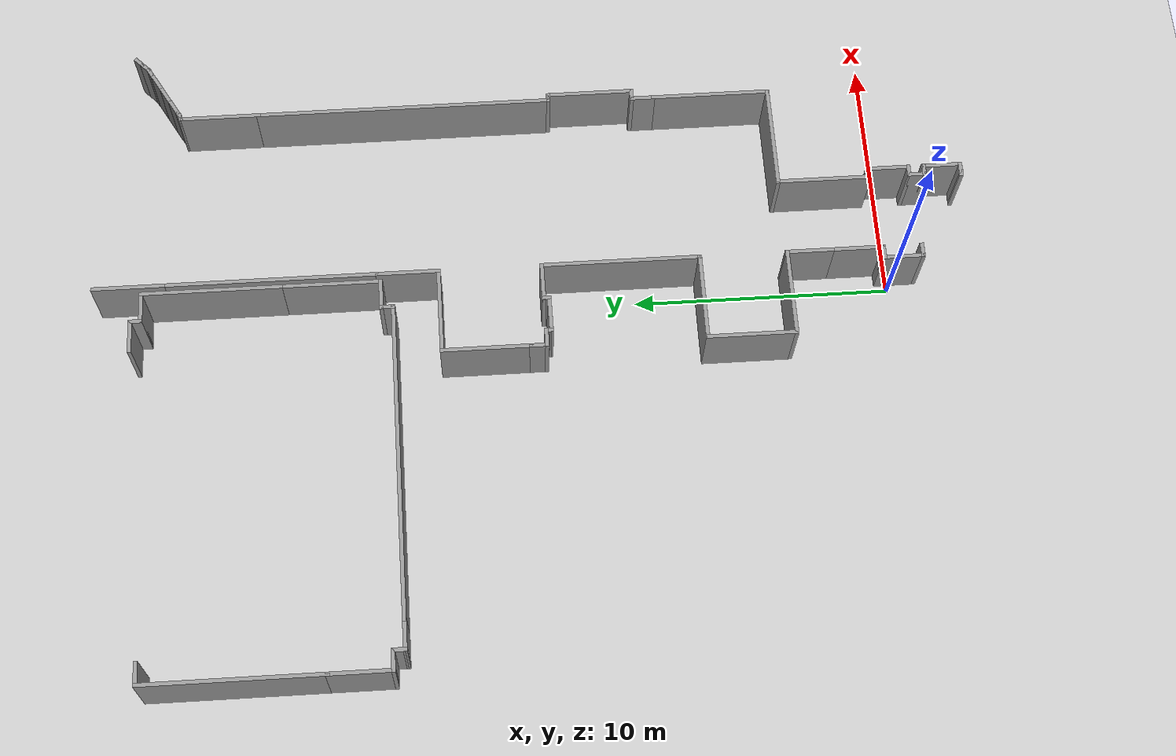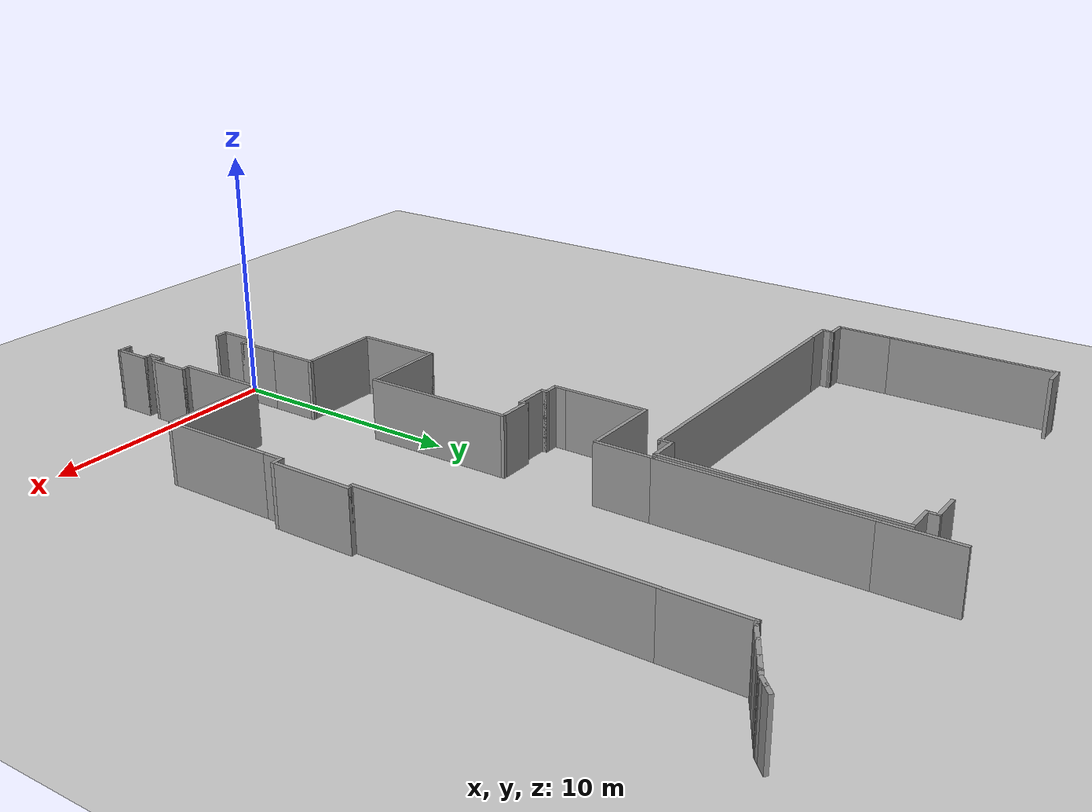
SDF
<sdf version="1.6">
 <world name="default">
  <model name="ground_plane">
   <static>1</static>
   <link name="link">
    <collision name="collision">
     <geometry><plane><normal>0 0 1</normal><size>100 100</size></plane></geometry>
     <surface><friction><ode><mu>100</mu><mu2>50</mu2></ode></friction></surface>
    </collision>
    <visual name="visual">
     <cast_shadows>0</cast_shadows>
     <geometry><plane><normal>0 0 1</normal><size>100 100</size></plane></geometry>
     <material>
      <script><uri>file://media/materials/scripts/gazebo.material</uri><name>Gazebo/Grey</name></script>
     </material>
    </visual>
   </link>
  </model>
  <model name="volen.world">
   <pose>-0.11623 -0.129362 0 0 -0 0</pose>
   <link name="Wall_104">
    <collision name="Wall_104_Collision">
     <geometry><box><size>0.5 0.15 2.5</size></box></geometry>
     <pose>0 0 1.25 0 -0 0</pose>
    </collision>
    <visual name="Wall_104_Visual">
     <pose>0 0 1.25 0 -0 0</pose>
     <geometry><box><size>0.5 0.15 2.5</size></box></geometry>
     <material>
      <script><uri>file://media/materials/scripts/gazebo.material</uri><name>Gazebo/Grey</name></script>
      <ambient>1 1 1 1</ambient>
     </material>
    </visual>
    <pose>10.9357 29.4725 0 0 0 -2.35619</pose>
   </link>
   <link name="Wall_105">
    <collision name="Wall_105_Collision">
     <geometry><box><size>0.5 0.15 2.5</size></box></geometry>
     <pose>0 0 1.25 0 -0 0</pose>
    </collision>
    <visual name="Wall_105_Visual">
     <pose>0 0 1.25 0 -0 0</pose>
     <geometry><box><size>0.5 0.15 2.5</size></box></geometry>
     <material>
      <script><uri>file://media/materials/scripts/gazebo.material</uri><name>Gazebo/Grey</name></script>
      <ambient>1 1 1 1</ambient>
     </material>
    </visual>
    <pose>10.6882 29.225 0 0 0 -2.35619</pose>
   </link>
   <link name="Wall_106">
    <collision name="Wall_106_Collision">
     <geometry><box><size>0.5 0.15 2.5</size></box></geometry>
     <pose>0 0 1.25 0 -0 0</pose>
    </collision>
    <visual name="Wall_106_Visual">
     <pose>0 0 1.25 0 -0 0</pose>
     <geometry><box><size>0.5 0.15 2.5</size></box></geometry>
     <material>
      <script><uri>file://media/materials/scripts/gazebo.material</uri><name>Gazebo/Grey</name></script>
      <ambient>1 1 1 1</ambient>
     </material>
    </visual>
    <pose>10.4129 29.0138 0 0 0 -2.61799</pose>
   </link>
   <link name="Wall_108">
    <collision name="Wall_108_Collision">
     <geometry><box><size>0.75 0.15 2.5</size></box></geometry>
     <pose>0 0 1.25 0 -0 0</pose>
    </collision>
    <visual name="Wall_108_Visual">
     <pose>0 0 1.25 0 -0 0</pose>
     <geometry><box><size>0.75 0.15 2.5</size></box></geometry>
     <material>
      <script><uri>file://media/materials/scripts/gazebo.material</uri><name>Gazebo/Grey</name></script>
      <ambient>1 1 1 1</ambient>
     </material>
    </visual>
    <pose>10.0015 28.7763 0 0 0 -2.61799</pose>
   </link>
   <link name="Wall_109">
    <collision name="Wall_109_Collision">
     <geometry><box><size>1 0.15 2.5</size></box></geometry>
     <pose>0 0 1.25 0 -0 0</pose>
    </collision>
    <visual name="Wall_109_Visual">
     <pose>0 0 1.25 0 -0 0</pose>
     <geometry><box><size>1 0.15 2.5</size></box></geometry>
     <material>
      <script><uri>file://media/materials/scripts/gazebo.material</uri><name>Gazebo/Grey</name></script>
      <ambient>1 1 1 1</ambient>
     </material>
    </visual>
    <pose>9.37367 28.4138 0 0 0 -2.61799</pose>
   </link>
   <link name="Wall_110">
    <collision name="Wall_110_Collision">
     <geometry><box><size>0.75 0.15 2.5</size></box></geometry>
     <pose>0 0 1.25 0 -0 0</pose>
    </collision>
    <visual name="Wall_110_Visual">
     <pose>0 0 1.25 0 -0 0</pose>
     <geometry><box><size>0.75 0.15 2.5</size></box></geometry>
     <material>
      <script><uri>file://media/materials/scripts/gazebo.material</uri><name>Gazebo/Grey</name></script>
      <ambient>1 1 1 1</ambient>
     </material>
    </visual>
    <pose>8.7458 28.0513 0 0 0 -2.61799</pose>
   </link>
   <link name="Wall_111">
    <collision name="Wall_111_Collision">
     <geometry><box><size>0.25 0.15 2.5</size></box></geometry>
     <pose>0 0 1.25 0 -0 0</pose>
    </collision>
    <visual name="Wall_111_Visual">
     <pose>0 0 1.25 0 -0 0</pose>
     <geometry><box><size>0.25 0.15 2.5</size></box></geometry>
     <material>
      <script><uri>file://media/materials/scripts/gazebo.material</uri><name>Gazebo/Grey</name></script>
      <ambient>1 1 1 1</ambient>
     </material>
    </visual>
    <pose>8.44269 27.8763 0 0 0 -2.61799</pose>
   </link>
   <link name="Wall_112">
    <collision name="Wall_112_Collision">
     <geometry><box><size>0.25 0.15 2.5</size></box></geometry>
     <pose>0 0 1.25 0 -0 0</pose>
    </collision>
    <visual name="Wall_112_Visual">
     <pose>0 0 1.25 0 -0 0</pose>
     <geometry><box><size>0.25 0.15 2.5</size></box></geometry>
     <material>
      <script><uri>file://media/materials/scripts/gazebo.material</uri><name>Gazebo/Grey</name></script>
      <ambient>1 1 1 1</ambient>
     </material>
    </visual>
    <pose>8.3511 27.8383 0 0 0 -2.87979</pose>
   </link>
   <link name="Wall_113">
    <collision name="Wall_113_Collision">
     <geometry><box><size>0.25 0.15 2.5</size></box></geometry>
     <pose>0 0 1.25 0 -0 0</pose>
    </collision>
    <visual name="Wall_113_Visual">
     <pose>0 0 1.25 0 -0 0</pose>
     <geometry><box><size>0.25 0.15 2.5</size></box></geometry>
     <material>
      <script><uri>file://media/materials/scripts/gazebo.material</uri><name>Gazebo/Grey</name></script>
      <ambient>1 1 1 1</ambient>
     </material>
    </visual>
    <pose>8.2545 27.8124 0 0 0 -2.87979</pose>
   </link>
   <link name="Wall_114">
    <collision name="Wall_114_Collision">
     <geometry><box><size>3.25 0.15 2.5</size></box></geometry>
     <pose>0 0 1.25 0 -0 0</pose>
    </collision>
    <visual name="Wall_114_Visual">
     <pose>0 0 1.25 0 -0 0</pose>
     <geometry><box><size>3.25 0.15 2.5</size></box></geometry>
     <material>
      <script><uri>file://media/materials/scripts/gazebo.material</uri><name>Gazebo/Grey</name></script>
      <ambient>1 1 1 1</ambient>
     </material>
    </visual>
    <pose>8.20621 26.2495 0 0 0 -1.5708</pose>
   </link>
   <link name="Wall_116">
    <collision name="Wall_116_Collision">
     <geometry><box><size>11.75 0.15 2.5</size></box></geometry>
     <pose>0 0 1.25 0 -0 0</pose>
    </collision>
    <visual name="Wall_116_Visual">
     <pose>0 0 1.25 0 -0 0</pose>
     <geometry><box><size>11.75 0.15 2.5</size></box></geometry>
     <material>
      <script><uri>file://media/materials/scripts/gazebo.material</uri><name>Gazebo/Grey</name></script>
      <ambient>1 1 1 1</ambient>
     </material>
    </visual>
    <pose>8.20622 18.8994 0 0 0 -1.57079</pose>
   </link>
   <link name="Wall_118">
    <collision name="Wall_118_Collision">
     <geometry><box><size>0.38 0.15 2.5</size></box></geometry>
     <pose>0 0 1.25 0 -0 0</pose>
    </collision>
    <visual name="Wall_118_Visual">
     <pose>0 0 1.25 0 -0 0</pose>
     <geometry><box><size>0.38 0.15 2.5</size></box></geometry>
     <material>
      <script><uri>file://media/materials/scripts/gazebo.material</uri><name>Gazebo/Grey</name></script>
      <ambient>1 1 1 1</ambient>
     </material>
    </visual>
    <pose>8.32123 13.0994 0 0 -0 0</pose>
   </link>
   <link name="Wall_121">
    <collision name="Wall_121_Collision">
     <geometry><box><size>3.5 0.15 2.5</size></box></geometry>
     <pose>0 0 1.25 0 -0 0</pose>
    </collision>
    <visual name="Wall_121_Visual">
     <pose>0 0 1.25 0 -0 0</pose>
     <geometry><box><size>3.5 0.15 2.5</size></box></geometry>
     <material>
      <script><uri>file://media/materials/scripts/gazebo.material</uri><name>Gazebo/Grey</name></script>
      <ambient>1 1 1 1</ambient>
     </material>
    </visual>
    <pose>8.43623 11.4244 0 0 0 -1.5708</pose>
   </link>
   <link name="Wall_122">
    <collision name="Wall_122_Collision">
     <geometry><box><size>0.5 0.15 2.5</size></box></geometry>
     <pose>0 0 1.25 0 -0 0</pose>
    </collision>
    <visual name="Wall_122_Visual">
     <pose>0 0 1.25 0 -0 0</pose>
     <geometry><box><size>0.5 0.15 2.5</size></box></geometry>
     <material>
      <script><uri>file://media/materials/scripts/gazebo.material</uri><name>Gazebo/Grey</name></script>
      <ambient>1 1 1 1</ambient>
     </material>
    </visual>
    <pose>8.26123 9.74936 0 0 -0 3.14159</pose>
   </link>
   <link name="Wall_123">
    <collision name="Wall_123_Collision">
     <geometry><box><size>1 0.15 2.5</size></box></geometry>
     <pose>0 0 1.25 0 -0 0</pose>
    </collision>
    <visual name="Wall_123_Visual">
     <pose>0 0 1.25 0 -0 0</pose>
     <geometry><box><size>1 0.15 2.5</size></box></geometry>
     <material>
      <script><uri>file://media/materials/scripts/gazebo.material</uri><name>Gazebo/Grey</name></script>
      <ambient>1 1 1 1</ambient>
     </material>
    </visual>
    <pose>8.08623 9.32436 0 0 0 -1.5708</pose>
   </link>
   <link name="Wall_125">
    <collision name="Wall_125_Collision">
     <geometry><box><size>4.75 0.15 2.5</size></box></geometry>
     <pose>0 0 1.25 0 -0 0</pose>
    </collision>
    <visual name="Wall_125_Visual">
     <pose>0 0 1.25 0 -0 0</pose>
     <geometry><box><size>4.75 0.15 2.5</size></box></geometry>
     <material>
      <script><uri>file://media/materials/scripts/gazebo.material</uri><name>Gazebo/Grey</name></script>
      <ambient>1 1 1 1</ambient>
     </material>
    </visual>
    <pose>8.08623 6.59936 0 0 0 -1.5708</pose>
   </link>
   <link name="Wall_126">
    <collision name="Wall_126_Collision">
     <geometry><box><size>4.25 0.15 2.5</size></box></geometry>
     <pose>0 0 1.25 0 -0 0</pose>
    </collision>
    <visual name="Wall_126_Visual">
     <pose>0 0 1.25 0 -0 0</pose>
     <geometry><box><size>4.25 0.15 2.5</size></box></geometry>
     <material>
      <script><uri>file://media/materials/scripts/gazebo.material</uri><name>Gazebo/Grey</name></script>
      <ambient>1 1 1 1</ambient>
     </material>
    </visual>
    <pose>6.03623 4.29936 0 0 -0 3.14159</pose>
   </link>
   <link name="Wall_128">
    <collision name="Wall_128_Collision">
     <geometry><box><size>3.75 0.15 2.5</size></box></geometry>
     <pose>0 0 1.25 0 -0 0</pose>
    </collision>
    <visual name="Wall_128_Visual">
     <pose>0 0 1.25 0 -0 0</pose>
     <geometry><box><size>3.75 0.15 2.5</size></box></geometry>
     <material>
      <script><uri>file://media/materials/scripts/gazebo.material</uri><name>Gazebo/Grey</name></script>
      <ambient>1 1 1 1</ambient>
     </material>
    </visual>
    <pose>3.98623 2.49936 0 0 0 -1.5708</pose>
   </link>
   <link name="Wall_129">
    <collision name="Wall_129_Collision">
     <geometry><box><size>0.5 0.15 2.5</size></box></geometry>
     <pose>0 0 1.25 0 -0 0</pose>
    </collision>
    <visual name="Wall_129_Visual">
     <pose>0 0 1.25 0 -0 0</pose>
     <geometry><box><size>0.5 0.15 2.5</size></box></geometry>
     <material>
      <script><uri>file://media/materials/scripts/gazebo.material</uri><name>Gazebo/Grey</name></script>
      <ambient>1 1 1 1</ambient>
     </material>
    </visual>
    <pose>4.16123 0.699362 0 0 -0 0</pose>
   </link>
   <link name="Wall_130">
    <collision name="Wall_130_Collision">
     <geometry><box><size>1.75 0.15 2.5</size></box></geometry>
     <pose>0 0 1.25 0 -0 0</pose>
    </collision>
    <visual name="Wall_130_Visual">
     <pose>0 0 1.25 0 -0 0</pose>
     <geometry><box><size>1.75 0.15 2.5</size></box></geometry>
     <material>
      <script><uri>file://media/materials/scripts/gazebo.material</uri><name>Gazebo/Grey</name></script>
      <ambient>1 1 1 1</ambient>
     </material>
    </visual>
    <pose>4.33623 -0.100638 0 0 0 -1.5708</pose>
   </link>
   <link name="Wall_131">
    <collision name="Wall_131_Collision">
     <geometry><box><size>0.5 0.15 2.5</size></box></geometry>
     <pose>0 0 1.25 0 -0 0</pose>
    </collision>
    <visual name="Wall_131_Visual">
     <pose>0 0 1.25 0 -0 0</pose>
     <geometry><box><size>0.5 0.15 2.5</size></box></geometry>
     <material>
      <script><uri>file://media/materials/scripts/gazebo.material</uri><name>Gazebo/Grey</name></script>
      <ambient>1 1 1 1</ambient>
     </material>
    </visual>
    <pose>4.16123 -0.900638 0 0 -0 3.14159</pose>
   </link>
   <link name="Wall_132">
    <collision name="Wall_132_Collision">
     <geometry><box><size>0.75 0.15 2.5</size></box></geometry>
     <pose>0 0 1.25 0 -0 0</pose>
    </collision>
    <visual name="Wall_132_Visual">
     <pose>0 0 1.25 0 -0 0</pose>
     <geometry><box><size>0.75 0.15 2.5</size></box></geometry>
     <material>
      <script><uri>file://media/materials/scripts/gazebo.material</uri><name>Gazebo/Grey</name></script>
      <ambient>1 1 1 1</ambient>
     </material>
    </visual>
    <pose>3.98623 -1.20064 0 0 0 -1.5708</pose>
   </link>
   <link name="Wall_133">
    <collision name="Wall_133_Collision">
     <geometry><box><size>0.5 0.15 2.5</size></box></geometry>
     <pose>0 0 1.25 0 -0 0</pose>
    </collision>
    <visual name="Wall_133_Visual">
     <pose>0 0 1.25 0 -0 0</pose>
     <geometry><box><size>0.5 0.15 2.5</size></box></geometry>
     <material>
      <script><uri>file://media/materials/scripts/gazebo.material</uri><name>Gazebo/Grey</name></script>
      <ambient>1 1 1 1</ambient>
     </material>
    </visual>
    <pose>4.16123 -1.50064 0 0 -0 0</pose>
   </link>
   <link name="Wall_135">
    <collision name="Wall_135_Collision">
     <geometry><box><size>1.6 0.15 2.5</size></box></geometry>
     <pose>0 0 1.25 0 -0 0</pose>
    </collision>
    <visual name="Wall_135_Visual">
     <pose>0 0 1.25 0 -0 0</pose>
     <geometry><box><size>1.6 0.15 2.5</size></box></geometry>
     <material>
      <script><uri>file://media/materials/scripts/gazebo.material</uri><name>Gazebo/Grey</name></script>
      <ambient>1 1 1 1</ambient>
     </material>
    </visual>
    <pose>4.33623 -2.22564 0 0 0 -1.5708</pose>
   </link>
   <link name="Wall_136">
    <collision name="Wall_136_Collision">
     <geometry><box><size>0.480681 0.15 2.5</size></box></geometry>
     <pose>0 0 1.25 0 -0 0</pose>
    </collision>
    <visual name="Wall_136_Visual">
     <pose>0 0 1.25 0 -0 0</pose>
     <geometry><box><size>0.480681 0.15 2.5</size></box></geometry>
     <material>
      <script><uri>file://media/materials/scripts/gazebo.material</uri><name>Gazebo/Grey</name></script>
      <ambient>1 1 1 1</ambient>
     </material>
    </visual>
    <pose>4.17098 -2.94965 0 0 -0 3.13564</pose>
   </link>
   <link name="Wall_137">
    <collision name="Wall_137_Collision">
     <geometry><box><size>0.280454 0.15 2.5</size></box></geometry>
     <pose>0 0 1.25 0 -0 0</pose>
    </collision>
    <visual name="Wall_137_Visual">
     <pose>0 0 1.25 0 -0 0</pose>
     <geometry><box><size>0.280454 0.15 2.5</size></box></geometry>
     <material>
      <script><uri>file://media/materials/scripts/gazebo.material</uri><name>Gazebo/Grey</name></script>
      <ambient>1 1 1 1</ambient>
     </material>
    </visual>
    <pose>3.94053 -2.94916 0 0 -0 3.04965</pose>
   </link>
   <link name="Wall_254">
    <collision name="Wall_254_Collision">
     <geometry><box><size>0.6 0.15 2.5</size></box></geometry>
     <pose>0 0 1.25 0 -0 0</pose>
    </collision>
    <visual name="Wall_254_Visual">
     <pose>0 0 1.25 0 -0 0</pose>
     <geometry><box><size>0.6 0.15 2.5</size></box></geometry>
     <material>
      <script><uri>file://media/materials/scripts/gazebo.material</uri><name>Gazebo/Grey</name></script>
      <ambient>1 1 1 1</ambient>
     </material>
    </visual>
    <pose>0.67023 -0.969638 0 0 -0 3.14159</pose>
   </link>
   <link name="Wall_256">
    <collision name="Wall_256_Collision">
     <geometry><box><size>1.65 0.15 2.5</size></box></geometry>
     <pose>0 0 1.25 0 -0 0</pose>
    </collision>
    <visual name="Wall_256_Visual">
     <pose>0 0 1.25 0 -0 0</pose>
     <geometry><box><size>1.65 0.15 2.5</size></box></geometry>
     <material>
      <script><uri>file://media/materials/scripts/gazebo.material</uri><name>Gazebo/Grey</name></script>
      <ambient>1 1 1 1</ambient>
     </material>
    </visual>
    <pose>0.44523 -0.219638 0 0 -0 1.5708</pose>
   </link>
   <link name="Wall_258">
    <collision name="Wall_258_Collision">
     <geometry><box><size>0.6 0.15 2.5</size></box></geometry>
     <pose>0 0 1.25 0 -0 0</pose>
    </collision>
    <visual name="Wall_258_Visual">
     <pose>0 0 1.25 0 -0 0</pose>
     <geometry><box><size>0.6 0.15 2.5</size></box></geometry>
     <material>
      <script><uri>file://media/materials/scripts/gazebo.material</uri><name>Gazebo/Grey</name></script>
      <ambient>1 1 1 1</ambient>
     </material>
    </visual>
    <pose>0.67023 0.530362 0 0 -0 0</pose>
   </link>
   <link name="Wall_260">
    <collision name="Wall_260_Collision">
     <geometry><box><size>2 0.15 2.5</size></box></geometry>
     <pose>0 0 1.25 0 -0 0</pose>
    </collision>
    <visual name="Wall_260_Visual">
     <pose>0 0 1.25 0 -0 0</pose>
     <geometry><box><size>2 0.15 2.5</size></box></geometry>
     <material>
      <script><uri>file://media/materials/scripts/gazebo.material</uri><name>Gazebo/Grey</name></script>
      <ambient>1 1 1 1</ambient>
     </material>
    </visual>
    <pose>0.89523 1.45536 0 0 -0 1.5708</pose>
   </link>
   <link name="Wall_262">
    <collision name="Wall_262_Collision">
     <geometry><box><size>2.05 0.15 2.5</size></box></geometry>
     <pose>0 0 1.25 0 -0 0</pose>
    </collision>
    <visual name="Wall_262_Visual">
     <pose>0 0 1.25 0 -0 0</pose>
     <geometry><box><size>2.05 0.15 2.5</size></box></geometry>
     <material>
      <script><uri>file://media/materials/scripts/gazebo.material</uri><name>Gazebo/Grey</name></script>
      <ambient>1 1 1 1</ambient>
     </material>
    </visual>
    <pose>0.89523 3.33036 0 0 -0 1.5708</pose>
   </link>
   <link name="Wall_265">
    <collision name="Wall_265_Collision">
     <geometry><box><size>3.53 0.15 2.5</size></box></geometry>
     <pose>0 0 1.25 0 -0 0</pose>
    </collision>
    <visual name="Wall_265_Visual">
     <pose>0 0 1.25 0 -0 0</pose>
     <geometry><box><size>3.53 0.15 2.5</size></box></geometry>
     <material>
      <script><uri>file://media/materials/scripts/gazebo.material</uri><name>Gazebo/Grey</name></script>
      <ambient>1 1 1 1</ambient>
     </material>
    </visual>
    <pose>-0.79477 4.28036 0 0 -0 3.14159</pose>
   </link>
   <link name="Wall_268">
    <collision name="Wall_268_Collision">
     <geometry><box><size>3.55 0.15 2.5</size></box></geometry>
     <pose>0 0 1.25 0 -0 0</pose>
    </collision>
    <visual name="Wall_268_Visual">
     <pose>0 0 1.25 0 -0 0</pose>
     <geometry><box><size>3.55 0.15 2.5</size></box></geometry>
     <material>
      <script><uri>file://media/materials/scripts/gazebo.material</uri><name>Gazebo/Grey</name></script>
      <ambient>1 1 1 1</ambient>
     </material>
    </visual>
    <pose>-2.48477 5.98036 0 0 -0 1.5708</pose>
   </link>
   <link name="Wall_270">
    <collision name="Wall_270_Collision">
     <geometry><box><size>3.53 0.15 2.5</size></box></geometry>
     <pose>0 0 1.25 0 -0 0</pose>
    </collision>
    <visual name="Wall_270_Visual">
     <pose>0 0 1.25 0 -0 0</pose>
     <geometry><box><size>3.53 0.15 2.5</size></box></geometry>
     <material>
      <script><uri>file://media/materials/scripts/gazebo.material</uri><name>Gazebo/Grey</name></script>
      <ambient>1 1 1 1</ambient>
     </material>
    </visual>
    <pose>-0.79477 7.68036 0 0 -0 0</pose>
   </link>
   <link name="Wall_273">
    <collision name="Wall_273_Collision">
     <geometry><box><size>6.28 0.15 2.5</size></box></geometry>
     <pose>0 0 1.25 0 -0 0</pose>
    </collision>
    <visual name="Wall_273_Visual">
     <pose>0 0 1.25 0 -0 0</pose>
     <geometry><box><size>6.28 0.15 2.5</size></box></geometry>
     <material>
      <script><uri>file://media/materials/scripts/gazebo.material</uri><name>Gazebo/Grey</name></script>
      <ambient>1 1 1 1</ambient>
     </material>
    </visual>
    <pose>0.89523 10.7454 0 0 -0 1.5708</pose>
   </link>
   <link name="Wall_276">
    <collision name="Wall_276_Collision">
     <geometry><box><size>1.55 0.15 2.5</size></box></geometry>
     <pose>0 0 1.25 0 -0 0</pose>
    </collision>
    <visual name="Wall_276_Visual">
     <pose>0 0 1.25 0 -0 0</pose>
     <geometry><box><size>1.55 0.15 2.5</size></box></geometry>
     <material>
      <script><uri>file://media/materials/scripts/gazebo.material</uri><name>Gazebo/Grey</name></script>
      <ambient>1 1 1 1</ambient>
     </material>
    </visual>
    <pose>0.19523 13.8104 0 0 -0 3.14159</pose>
   </link>
   <link name="Wall_278">
    <collision name="Wall_278_Collision">
     <geometry><box><size>0.35 0.15 2.5</size></box></geometry>
     <pose>0 0 1.25 0 -0 0</pose>
    </collision>
    <visual name="Wall_278_Visual">
     <pose>0 0 1.25 0 -0 0</pose>
     <geometry><box><size>0.35 0.15 2.5</size></box></geometry>
     <material>
      <script><uri>file://media/materials/scripts/gazebo.material</uri><name>Gazebo/Grey</name></script>
      <ambient>1 1 1 1</ambient>
     </material>
    </visual>
    <pose>-0.50477 13.7104 0 0 0 -1.5708</pose>
   </link>
   <link name="Wall_285">
    <collision name="Wall_285_Collision">
     <geometry><box><size>1.5 0.15 2.5</size></box></geometry>
     <pose>0 0 1.25 0 -0 0</pose>
    </collision>
    <visual name="Wall_285_Visual">
     <pose>0 0 1.25 0 -0 0</pose>
     <geometry><box><size>1.5 0.15 2.5</size></box></geometry>
     <material>
      <script><uri>file://media/materials/scripts/gazebo.material</uri><name>Gazebo/Grey</name></script>
      <ambient>1 1 1 1</ambient>
     </material>
    </visual>
    <pose>-1.17977 13.6069 0 0 0 -3.13641</pose>
   </link>
   <link name="Wall_286">
    <collision name="Wall_286_Collision">
     <geometry><box><size>0.35 0.15 2.5</size></box></geometry>
     <pose>0 0 1.25 0 -0 0</pose>
    </collision>
    <visual name="Wall_286_Visual">
     <pose>0 0 1.25 0 -0 0</pose>
     <geometry><box><size>0.35 0.15 2.5</size></box></geometry>
     <material>
      <script><uri>file://media/materials/scripts/gazebo.material</uri><name>Gazebo/Grey</name></script>
      <ambient>1 1 1 1</ambient>
     </material>
    </visual>
    <pose>-1.85477 13.7034 0 0 -0 1.5708</pose>
   </link>
   <link name="Wall_291">
    <collision name="Wall_291_Collision">
     <geometry><box><size>0.75 0.15 2.5</size></box></geometry>
     <pose>0 0 1.25 0 -0 0</pose>
    </collision>
    <visual name="Wall_291_Visual">
     <pose>0 0 1.25 0 -0 0</pose>
     <geometry><box><size>0.75 0.15 2.5</size></box></geometry>
     <material>
      <script><uri>file://media/materials/scripts/gazebo.material</uri><name>Gazebo/Grey</name></script>
      <ambient>1 1 1 1</ambient>
     </material>
    </visual>
    <pose>-2.15477 13.8034 0 0 -0 3.14159</pose>
   </link>
   <link name="Wall_292">
    <collision name="Wall_292_Collision">
     <geometry><box><size>0.75 0.15 2.5</size></box></geometry>
     <pose>0 0 1.25 0 -0 0</pose>
    </collision>
    <visual name="Wall_292_Visual">
     <pose>0 0 1.25 0 -0 0</pose>
     <geometry><box><size>0.75 0.15 2.5</size></box></geometry>
     <material>
      <script><uri>file://media/materials/scripts/gazebo.material</uri><name>Gazebo/Grey</name></script>
      <ambient>1 1 1 1</ambient>
     </material>
    </visual>
    <pose>-2.45477 14.1034 0 0 -0 1.5708</pose>
   </link>
   <link name="Wall_294">
    <collision name="Wall_294_Collision">
     <geometry><box><size>3.55 0.15 2.5</size></box></geometry>
     <pose>0 0 1.25 0 -0 0</pose>
    </collision>
    <visual name="Wall_294_Visual">
     <pose>0 0 1.25 0 -0 0</pose>
     <geometry><box><size>3.55 0.15 2.5</size></box></geometry>
     <material>
      <script><uri>file://media/materials/scripts/gazebo.material</uri><name>Gazebo/Grey</name></script>
      <ambient>1 1 1 1</ambient>
     </material>
    </visual>
    <pose>-2.45477 16.1034 0 0 -0 1.5708</pose>
   </link>
   <link name="Wall_296">
    <collision name="Wall_296_Collision">
     <geometry><box><size>3.5 0.15 2.5</size></box></geometry>
     <pose>0 0 1.25 0 -0 0</pose>
    </collision>
    <visual name="Wall_296_Visual">
     <pose>0 0 1.25 0 -0 0</pose>
     <geometry><box><size>3.5 0.15 2.5</size></box></geometry>
     <material>
      <script><uri>file://media/materials/scripts/gazebo.material</uri><name>Gazebo/Grey</name></script>
      <ambient>1 1 1 1</ambient>
     </material>
    </visual>
    <pose>-0.77977 17.8034 0 0 -0 0</pose>
   </link>
   <link name="Wall_298">
    <collision name="Wall_298_Collision">
     <geometry><box><size>2.5 0.15 2.5</size></box></geometry>
     <pose>0 0 1.25 0 -0 0</pose>
    </collision>
    <visual name="Wall_298_Visual">
     <pose>0 0 1.25 0 -0 0</pose>
     <geometry><box><size>2.5 0.15 2.5</size></box></geometry>
     <material>
      <script><uri>file://media/materials/scripts/gazebo.material</uri><name>Gazebo/Grey</name></script>
      <ambient>1 1 1 1</ambient>
     </material>
    </visual>
    <pose>0.89523 18.9784 0 0 -0 1.5708</pose>
   </link>
   <link name="Wall_300">
    <collision name="Wall_300_Collision">
     <geometry><box><size>8.25 0.15 2.5</size></box></geometry>
     <pose>0 0 1.25 0 -0 0</pose>
    </collision>
    <visual name="Wall_300_Visual">
     <pose>0 0 1.25 0 -0 0</pose>
     <geometry><box><size>8.25 0.15 2.5</size></box></geometry>
     <material>
      <script><uri>file://media/materials/scripts/gazebo.material</uri><name>Gazebo/Grey</name></script>
      <ambient>1 1 1 1</ambient>
     </material>
    </visual>
    <pose>0.89523 24.2034 0 0 -0 1.5708</pose>
   </link>
   <link name="Wall_302">
    <collision name="Wall_302_Collision">
     <geometry><box><size>3 0.15 2.5</size></box></geometry>
     <pose>0 0 1.25 0 -0 0</pose>
    </collision>
    <visual name="Wall_302_Visual">
     <pose>0 0 1.25 0 -0 0</pose>
     <geometry><box><size>3 0.15 2.5</size></box></geometry>
     <material>
      <script><uri>file://media/materials/scripts/gazebo.material</uri><name>Gazebo/Grey</name></script>
      <ambient>1 1 1 1</ambient>
     </material>
    </visual>
    <pose>0.89523 29.6784 0 0 -0 1.5708</pose>
   </link>
   <link name="Wall_310">
    <collision name="Wall_310_Collision">
     <geometry><box><size>1.35 0.15 2.5</size></box></geometry>
     <pose>0 0 1.25 0 -0 0</pose>
    </collision>
    <visual name="Wall_310_Visual">
     <pose>0 0 1.25 0 -0 0</pose>
     <geometry><box><size>1.35 0.15 2.5</size></box></geometry>
     <material>
      <script><uri>file://media/materials/scripts/gazebo.material</uri><name>Gazebo/Grey</name></script>
      <ambient>1 1 1 1</ambient>
     </material>
    </visual>
    <pose>-1.15477 29.6464 0 0 -0 0</pose>
   </link>
   <link name="Wall_312">
    <collision name="Wall_312_Collision">
     <geometry><box><size>0.55 0.15 2.5</size></box></geometry>
     <pose>0 0 1.25 0 -0 0</pose>
    </collision>
    <visual name="Wall_312_Visual">
     <pose>0 0 1.25 0 -0 0</pose>
     <geometry><box><size>0.55 0.15 2.5</size></box></geometry>
     <material>
      <script><uri>file://media/materials/scripts/gazebo.material</uri><name>Gazebo/Grey</name></script>
      <ambient>1 1 1 1</ambient>
     </material>
    </visual>
    <pose>-0.55477 29.4464 0 0 0 -1.5708</pose>
   </link>
   <link name="Wall_314">
    <collision name="Wall_314_Collision">
     <geometry><box><size>1.29 0.15 2.5</size></box></geometry>
     <pose>0 0 1.25 0 -0 0</pose>
    </collision>
    <visual name="Wall_314_Visual">
     <pose>0 0 1.25 0 -0 0</pose>
     <geometry><box><size>1.29 0.15 2.5</size></box></geometry>
     <material>
      <script><uri>file://media/materials/scripts/gazebo.material</uri><name>Gazebo/Grey</name></script>
      <ambient>1 1 1 1</ambient>
     </material>
    </visual>
    <pose>0.01523 29.2464 0 0 -0 0</pose>
   </link>
   <link name="Wall_316">
    <collision name="Wall_316_Collision">
     <geometry><box><size>5.5 0.15 2.5</size></box></geometry>
     <pose>0 0 1.25 0 -0 0</pose>
    </collision>
    <visual name="Wall_316_Visual">
     <pose>0 0 1.25 0 -0 0</pose>
     <geometry><box><size>5.5 0.15 2.5</size></box></geometry>
     <material>
      <script><uri>file://media/materials/scripts/gazebo.material</uri><name>Gazebo/Grey</name></script>
      <ambient>1 1 1 1</ambient>
     </material>
    </visual>
    <pose>0.58523 26.5714 0 0 0 -1.5708</pose>
   </link>
   <link name="Wall_318">
    <collision name="Wall_318_Collision">
     <geometry><box><size>4 0.15 2.5</size></box></geometry>
     <pose>0 0 1.25 0 -0 0</pose>
    </collision>
    <visual name="Wall_318_Visual">
     <pose>0 0 1.25 0 -0 0</pose>
     <geometry><box><size>4 0.15 2.5</size></box></geometry>
     <material>
      <script><uri>file://media/materials/scripts/gazebo.material</uri><name>Gazebo/Grey</name></script>
      <ambient>1 1 1 1</ambient>
     </material>
    </visual>
    <pose>0.58523 21.9714 0 0 0 -1.5708</pose>
   </link>
   <link name="Wall_319">
    <collision name="Wall_319_Collision">
     <geometry><box><size>1.25 0.15 2.5</size></box></geometry>
     <pose>0 0 1.25 0 -0 0</pose>
    </collision>
    <visual name="Wall_319_Visual">
     <pose>0 0 1.25 0 -0 0</pose>
     <geometry><box><size>1.25 0.15 2.5</size></box></geometry>
     <material>
      <script><uri>file://media/materials/scripts/gazebo.material</uri><name>Gazebo/Grey</name></script>
      <ambient>1 1 1 1</ambient>
     </material>
    </visual>
    <pose>0.03523 20.0464 0 0 -0 3.14159</pose>
   </link>
   <link name="Wall_320">
    <collision name="Wall_320_Collision">
     <geometry><box><size>0.6 0.15 2.5</size></box></geometry>
     <pose>0 0 1.25 0 -0 0</pose>
    </collision>
    <visual name="Wall_320_Visual">
     <pose>0 0 1.25 0 -0 0</pose>
     <geometry><box><size>0.6 0.15 2.5</size></box></geometry>
     <material>
      <script><uri>file://media/materials/scripts/gazebo.material</uri><name>Gazebo/Grey</name></script>
      <ambient>1 1 1 1</ambient>
     </material>
    </visual>
    <pose>-0.51477 19.8214 0 0 0 -1.5708</pose>
   </link>
   <link name="Wall_322">
    <collision name="Wall_322_Collision">
     <geometry><box><size>12.5 0.15 2.5</size></box></geometry>
     <pose>0 0 1.25 0 -0 0</pose>
    </collision>
    <visual name="Wall_322_Visual">
     <pose>0 0 1.25 0 -0 0</pose>
     <geometry><box><size>12.5 0.15 2.5</size></box></geometry>
     <material>
      <script><uri>file://media/materials/scripts/gazebo.material</uri><name>Gazebo/Grey</name></script>
      <ambient>1 1 1 1</ambient>
     </material>
    </visual>
    <pose>-6.68977 19.5964 0 0 -0 3.14159</pose>
   </link>
   <link name="Wall_324">
    <collision name="Wall_324_Collision">
     <geometry><box><size>1.25 0.15 2.5</size></box></geometry>
     <pose>0 0 1.25 0 -0 0</pose>
    </collision>
    <visual name="Wall_324_Visual">
     <pose>0 0 1.25 0 -0 0</pose>
     <geometry><box><size>1.25 0.15 2.5</size></box></geometry>
     <material>
      <script><uri>file://media/materials/scripts/gazebo.material</uri><name>Gazebo/Grey</name></script>
      <ambient>1 1 1 1</ambient>
     </material>
    </visual>
    <pose>-13.4148 19.5964 0 0 -0 3.14159</pose>
   </link>
   <link name="Wall_325">
    <collision name="Wall_325_Collision">
     <geometry><box><size>0.590224 0.15 2.5</size></box></geometry>
     <pose>0 0 1.25 0 -0 0</pose>
    </collision>
    <visual name="Wall_325_Visual">
     <pose>0 0 1.25 0 -0 0</pose>
     <geometry><box><size>0.590224 0.15 2.5</size></box></geometry>
     <material>
      <script><uri>file://media/materials/scripts/gazebo.material</uri><name>Gazebo/Grey</name></script>
      <ambient>1 1 1 1</ambient>
     </material>
    </visual>
    <pose>-13.9598 19.8164 0 0 -0 1.54807</pose>
   </link>
   <link name="Wall_327">
    <collision name="Wall_327_Collision">
     <geometry><box><size>0.89 0.15 2.5</size></box></geometry>
     <pose>0 0 1.25 0 -0 0</pose>
    </collision>
    <visual name="Wall_327_Visual">
     <pose>0 0 1.25 0 -0 0</pose>
     <geometry><box><size>0.89 0.15 2.5</size></box></geometry>
     <material>
      <script><uri>file://media/materials/scripts/gazebo.material</uri><name>Gazebo/Grey</name></script>
      <ambient>1 1 1 1</ambient>
     </material>
    </visual>
    <pose>-14.3248 20.0364 0 0 -0 3.14159</pose>
   </link>
   <link name="Wall_329">
    <collision name="Wall_329_Collision">
     <geometry><box><size>2.5 0.15 2.5</size></box></geometry>
     <pose>0 0 1.25 0 -0 0</pose>
    </collision>
    <visual name="Wall_329_Visual">
     <pose>0 0 1.25 0 -0 0</pose>
     <geometry><box><size>2.5 0.15 2.5</size></box></geometry>
     <material>
      <script><uri>file://media/materials/scripts/gazebo.material</uri><name>Gazebo/Grey</name></script>
      <ambient>1 1 1 1</ambient>
     </material>
    </visual>
    <pose>-14.6948 21.2114 0 0 -0 1.5708</pose>
   </link>
   <link name="Wall_331">
    <collision name="Wall_331_Collision">
     <geometry><box><size>6.95 0.15 2.5</size></box></geometry>
     <pose>0 0 1.25 0 -0 0</pose>
    </collision>
    <visual name="Wall_331_Visual">
     <pose>0 0 1.25 0 -0 0</pose>
     <geometry><box><size>6.95 0.15 2.5</size></box></geometry>
     <material>
      <script><uri>file://media/materials/scripts/gazebo.material</uri><name>Gazebo/Grey</name></script>
      <ambient>1 1 1 1</ambient>
     </material>
    </visual>
    <pose>-14.6948 25.7864 0 0 -0 1.5708</pose>
   </link>
   <link name="Wall_333">
    <collision name="Wall_333_Collision">
     <geometry><box><size>0.95 0.15 2.5</size></box></geometry>
     <pose>0 0 1.25 0 -0 0</pose>
    </collision>
    <visual name="Wall_333_Visual">
     <pose>0 0 1.25 0 -0 0</pose>
     <geometry><box><size>0.95 0.15 2.5</size></box></geometry>
     <material>
      <script><uri>file://media/materials/scripts/gazebo.material</uri><name>Gazebo/Grey</name></script>
      <ambient>1 1 1 1</ambient>
     </material>
    </visual>
    <pose>-14.2948 29.1864 0 0 -0 0</pose>
   </link>
   <static>1</static>
  </model>
 </world>
</sdf>
